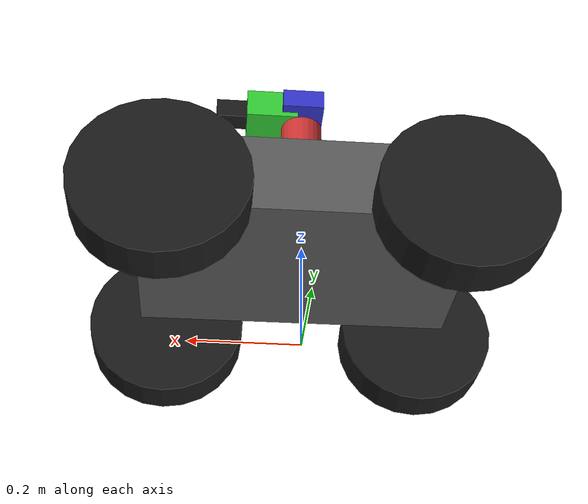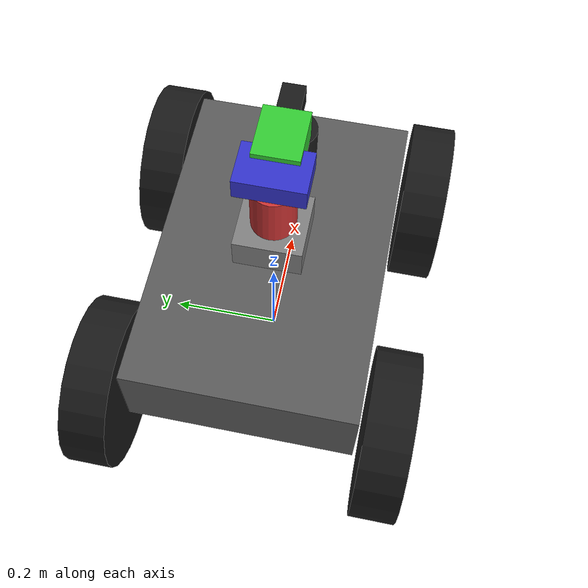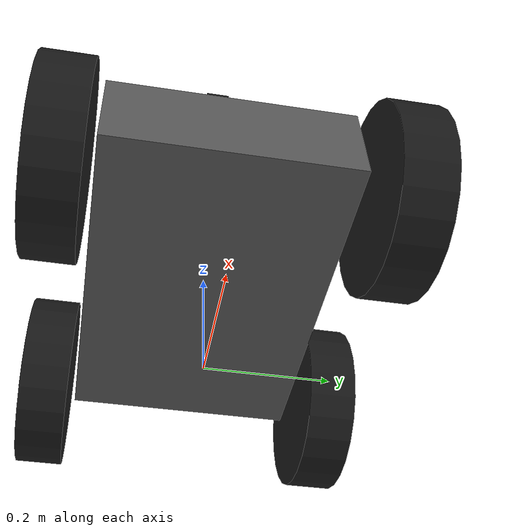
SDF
<?xml version="1.0" ?>
<sdf version="1.7">
  <model name="mecanum_robot" xmlns:gz="http://gazebosim.org/schema">

    <!-- BASE FOOTPRINT (虚拟链接) -->
    <link name="body">
      <inertial>
        <mass>0.001</mass>
        <inertia>
          <ixx>0.001</ixx>
          <iyy>0.001</iyy>
          <izz>0.001</izz>
        </inertia>
      </inertial>
    </link>

    <!-- CHASSIS -->
    <link name="chassis">
      <pose relative_to="body">0 0 0.225 0 0 0</pose>
      <inertial>
        <mass>15.0</mass>
        <inertia>
          <ixx>0.295</ixx>
          <iyy>0.645</iyy>
          <izz>0.850</izz>
        </inertia>
      </inertial>
      <visual name="chassis_visual">
        <geometry>
          <box>
            <size>0.6 0.4 0.15</size>
          </box>
        </geometry>
        <material>
          <ambient>0.35 0.35 0.35 1</ambient>
          <diffuse>0.35 0.35 0.35 1</diffuse>
        </material>
      </visual>
      <collision name="chassis_collision">
        <geometry>
          <box>
            <size>0.6 0.4 0.15</size>
          </box>
        </geometry>
      </collision>
    </link>

    <!-- body TO CHASSIS JOINT -->
    <joint name="body_to_chassis" type="fixed">
      <parent>body</parent>
      <child>chassis</child>
    </joint>

    <!-- FRONT LEFT WHEEL -->
    <link name="front_left_wheel_link">
      <pose relative_to="chassis">0.25 0.25 -0.075 -1.5707 0 0</pose>
      <inertial>
        <mass>0.5</mass>
        <inertia>
          <ixx>0.036458</ixx>
          <iyy>0.036458</iyy>
          <izz>0.03125</izz>
        </inertia>
      </inertial>
      <visual name="wheel_visual">
        <geometry>
          <cylinder>
            <radius>0.15</radius>
            <length>0.08</length>
          </cylinder>
        </geometry>
        <material>
          <ambient>0.1 0.1 0.1 1</ambient>
          <diffuse>0.1 0.1 0.1 1</diffuse>
        </material>
      </visual>
      <collision name="wheel_collision">
        <geometry>
          <cylinder>
            <radius>0.15</radius>
            <length>0.08</length>
          </cylinder>
        </geometry>
        <surface>
          <friction>
            <ode>
              <mu>1.0</mu>
              <mu2>0.0</mu2>
              <fdir1 gz:expressed_in="chassis">1 -1 0</fdir1>
            </ode>
          </friction>
        </surface>
      </collision>
    </link>

    <joint name="front_left_wheel_joint" type="revolute">
      <parent>chassis</parent>
      <child>front_left_wheel_link</child>
      <axis>
        <xyz>0 0 1</xyz>
      </axis>
    </joint>

    <!-- FRONT RIGHT WHEEL -->
    <link name="front_right_wheel_link">
      <pose relative_to="chassis">0.25 -0.25 -0.075 -1.5707 0 0</pose>
      <inertial>
        <mass>0.5</mass>
        <inertia>
          <ixx>0.036458</ixx>
          <iyy>0.036458</iyy>
          <izz>0.03125</izz>
        </inertia>
      </inertial>
      <visual name="wheel_visual">
        <geometry>
          <cylinder>
            <radius>0.15</radius>
            <length>0.08</length>
          </cylinder>
        </geometry>
        <material>
          <ambient>0.1 0.1 0.1 1</ambient>
          <diffuse>0.1 0.1 0.1 1</diffuse>
        </material>
      </visual>
      <collision name="wheel_collision">
        <geometry>
          <cylinder>
            <radius>0.15</radius>
            <length>0.08</length>
          </cylinder>
        </geometry>
        <surface>
          <friction>
            <ode>
              <mu>1.0</mu>
              <mu2>0.0</mu2>
              <fdir1 gz:expressed_in="chassis">1 1 0</fdir1>
            </ode>
          </friction>
        </surface>
      </collision>
    </link>

    <joint name="front_right_wheel_joint" type="revolute">
      <parent>chassis</parent>
      <child>front_right_wheel_link</child>
      <axis>
        <xyz>0 0 1</xyz>
      </axis>
    </joint>

    <!-- REAR LEFT WHEEL -->
    <link name="rear_left_wheel_link">
      <pose relative_to="chassis">-0.25 0.25 -0.075 -1.5707 0 0</pose>
      <inertial>
        <mass>0.5</mass>
        <inertia>
          <ixx>0.036458</ixx>
          <iyy>0.036458</iyy>
          <izz>0.03125</izz>
        </inertia>
      </inertial>
      <visual name="wheel_visual">
        <geometry>
          <cylinder>
            <radius>0.15</radius>
            <length>0.08</length>
          </cylinder>
        </geometry>
        <material>
          <ambient>0.1 0.1 0.1 1</ambient>
          <diffuse>0.1 0.1 0.1 1</diffuse>
        </material>
      </visual>
      <collision name="wheel_collision">
        <geometry>
          <cylinder>
            <radius>0.15</radius>
            <length>0.08</length>
          </cylinder>
        </geometry>
        <surface>
          <friction>
            <ode>
              <mu>1.0</mu>
              <mu2>0.0</mu2>
              <fdir1 gz:expressed_in="chassis">1 1 0</fdir1>
            </ode>
          </friction>
        </surface>
      </collision>
    </link>

    <joint name="rear_left_wheel_joint" type="revolute">
      <parent>chassis</parent>
      <child>rear_left_wheel_link</child>
      <axis>
        <xyz>0 0 1</xyz>
      </axis>
    </joint>

    <!-- REAR RIGHT WHEEL -->
    <link name="rear_right_wheel_link">
      <pose relative_to="chassis">-0.25 -0.25 -0.075 -1.5707 0 0</pose>
      <inertial>
        <mass>0.5</mass>
        <inertia>
          <ixx>0.036458</ixx>
          <iyy>0.036458</iyy>
          <izz>0.03125</izz>
        </inertia>
      </inertial>
      <visual name="wheel_visual">
        <geometry>
          <cylinder>
            <radius>0.15</radius>
            <length>0.08</length>
          </cylinder>
        </geometry>
        <material>
          <ambient>0.1 0.1 0.1 1</ambient>
          <diffuse>0.1 0.1 0.1 1</diffuse>
        </material>
      </visual>
      <collision name="wheel_collision">
        <geometry>
          <cylinder>
            <radius>0.15</radius>
            <length>0.08</length>
          </cylinder>
        </geometry>
        <surface>
          <friction>
            <ode>
              <mu>1.0</mu>
              <mu2>0.0</mu2>
              <fdir1 gz:expressed_in="chassis">1 -1 0</fdir1>
            </ode>
          </friction>
        </surface>
      </collision>
    </link>

    <joint name="rear_right_wheel_joint" type="revolute">
      <parent>chassis</parent>
      <child>rear_right_wheel_link</child>
      <axis>
        <xyz>0 0 1</xyz>
      </axis>
    </joint>

    <!-- LIDAR -->
    <link name="livox_lidar">
      <pose relative_to="chassis">0.2 0 0.125 0 0 0</pose>
      <inertial>
        <mass>0.2</mass>
        <inertia>
          <ixx>0.001</ixx>
          <iyy>0.001</iyy>
          <izz>0.001</izz>
        </inertia>
      </inertial>
      <visual name="lidar_visual">
        <geometry>
          <cylinder>
            <radius>0.04</radius>
            <length>0.06</length>
          </cylinder>
        </geometry>
        <material>
          <ambient>0.1 0.1 0.1 1</ambient>
          <diffuse>0.1 0.1 0.1 1</diffuse>
        </material>
      </visual>
      <collision name="lidar_collision">
        <geometry>
          <cylinder>
            <radius>0.04</radius>
            <length>0.06</length>
          </cylinder>
        </geometry>
      </collision>

      <!-- LIDAR SENSOR -->
      <sensor name="RGLLidar" type="custom">
        <plugin filename="RGLServerPluginInstance" name="rgl::RGLServerPluginInstance">
          <range>
            <min>0.05</min>
            <max>245</max>
          </range>
          <update_rate>10</update_rate>
          <update_on_paused_sim>false</update_on_paused_sim>
          <topic>livox/lidar</topic>
          <frame>livox_lidar</frame>
          <pattern_preset_path>/home/xlqmu/rm_sim_26/plugin/LivoxMid360.mat3x4f</pattern_preset_path>
        </plugin>
      </sensor>

      <!-- IMU SENSOR -->
      <sensor name="livox_lidar_imu" type="imu">
        <update_rate>100</update_rate>
        <always_on>true</always_on>
        <topic>/livox/imu</topic>
        <frame>livox_lidar</frame>
        <imu>
          <angular_velocity>
            <x>
              <noise type="gaussian">
                <mean>0.0</mean>
                <stddev>2e-4</stddev>
              </noise>
            </x>
            <y>
              <noise type="gaussian">
                <mean>0.0</mean>
                <stddev>2e-4</stddev>
              </noise>
            </y>
            <z>
              <noise type="gaussian">
                <mean>0.0</mean>
                <stddev>2e-4</stddev>
              </noise>
            </z>
          </angular_velocity>
          <linear_acceleration>
            <x>
              <noise type="gaussian">
                <mean>0.0</mean>
                <stddev>1.7e-2</stddev>
              </noise>
            </x>
            <y>
              <noise type="gaussian">
                <mean>0.0</mean>
                <stddev>1.7e-2</stddev>
              </noise>
            </y>
            <z>
              <noise type="gaussian">
                <mean>0.0</mean>
                <stddev>1.7e-2</stddev>
              </noise>
            </z>
          </linear_acceleration>
        </imu>
      </sensor>
    </link>

    <joint name="lidar_joint" type="fixed">
      <parent>chassis</parent>
      <child>livox_lidar</child>
    </joint>

    <!-- ========== 云台模块开始 ========== -->

    <!-- 云台底座 -->
    <link name="gimbal_base">
      <pose relative_to="chassis">0 0 0.125 0 0 0</pose>
      <inertial>
        <mass>0.5</mass>
        <inertia>
          <ixx>0.002</ixx>
          <iyy>0.002</iyy>
          <izz>0.002</izz>
        </inertia>
      </inertial>
      <visual name="gimbal_base_visual">
        <geometry>
          <box>
            <size>0.12 0.12 0.06</size>
          </box>
        </geometry>
        <material>
          <ambient>0.5 0.5 0.5 1</ambient>
          <diffuse>0.5 0.5 0.5 1</diffuse>
          <specular>0.3 0.3 0.3 1</specular>
        </material>
      </visual>
      <collision name="gimbal_base_collision">
        <geometry>
          <box>
            <size>0.12 0.12 0.06</size>
          </box>
        </geometry>
      </collision>
    </link>

    <joint name="gimbal_base_joint" type="fixed">
      <parent>chassis</parent>
      <child>gimbal_base</child>
    </joint>

    <!-- 云台偏航轴 (Yaw) -->
    <link name="gimbal_yaw">
      <pose relative_to="gimbal_base">0 0 0.08 0 0 0</pose>
      <inertial>
        <mass>0.3</mass>
        <inertia>
          <ixx>0.001</ixx>
          <iyy>0.001</iyy>
          <izz>0.001</izz>
        </inertia>
      </inertial>
      <visual name="gimbal_yaw_visual">
        <geometry>
          <cylinder>
            <radius>0.04</radius>
            <length>0.10</length>
          </cylinder>
        </geometry>
        <material>
          <ambient>0.8 0.2 0.2 1</ambient>
          <diffuse>0.8 0.2 0.2 1</diffuse>
          <specular>0.5 0.1 0.1 1</specular>
        </material>
      </visual>
      <collision name="gimbal_yaw_collision">
        <geometry>
          <cylinder>
            <radius>0.04</radius>
            <length>0.10</length>
          </cylinder>
        </geometry>
      </collision>
    </link>

    <joint name="gimbal_yaw_joint" type="revolute">
      <parent>gimbal_base</parent>
      <child>gimbal_yaw</child>
      <axis>
        <xyz>0 0 1</xyz>
        <limit>
          <lower>-3.14159</lower>
          <upper>3.14159</upper>
          <effort>10</effort>
          <velocity>3.14</velocity>
        </limit>
        <dynamics>
          <damping>0.1</damping>
          <friction>0.01</friction>
        </dynamics>
      </axis>
    </joint>

    <!-- 云台俯仰支架 -->
    <link name="gimbal_pitch_bracket">
      <pose relative_to="gimbal_yaw">0 0 0.08 0 0 0</pose>
      <inertial>
        <mass>0.2</mass>
        <inertia>
          <ixx>0.001</ixx>
          <iyy>0.001</iyy>
          <izz>0.001</izz>
        </inertia>
      </inertial>
      <visual name="gimbal_pitch_bracket_visual">
        <geometry>
          <box>
            <size>0.08 0.12 0.04</size>
          </box>
        </geometry>
        <material>
          <ambient>0.2 0.2 0.8 1</ambient>
          <diffuse>0.2 0.2 0.8 1</diffuse>
          <specular>0.1 0.1 0.5 1</specular>
        </material>
      </visual>
      <collision name="gimbal_pitch_bracket_collision">
        <geometry>
          <box>
            <size>0.08 0.12 0.04</size>
          </box>
        </geometry>
      </collision>
    </link>

    <joint name="gimbal_pitch_bracket_joint" type="fixed">
      <parent>gimbal_yaw</parent>
      <child>gimbal_pitch_bracket</child>
    </joint>

    <!-- 云台俯仰轴 (Pitch) -->
    <link name="gimbal_pitch">
      <pose relative_to="gimbal_pitch_bracket">0.06 0 0 0 0 0</pose>
      <inertial>
        <mass>0.25</mass>
        <inertia>
          <ixx>0.001</ixx>
          <iyy>0.002</iyy>
          <izz>0.002</izz>
        </inertia>
      </inertial>
      <visual name="gimbal_pitch_visual">
        <geometry>
          <box>
            <size>0.10 0.08 0.06</size>
          </box>
        </geometry>
        <material>
          <ambient>0.2 0.8 0.2 1</ambient>
          <diffuse>0.2 0.8 0.2 1</diffuse>
          <specular>0.1 0.5 0.1 1</specular>
        </material>
      </visual>
      <collision name="gimbal_pitch_collision">
        <geometry>
          <box>
            <size>0.10 0.08 0.06</size>
          </box>
        </geometry>
      </collision>
    </link>

    <joint name="gimbal_pitch_joint" type="revolute">
      <parent>gimbal_pitch_bracket</parent>
      <child>gimbal_pitch</child>
      <axis>
        <xyz>0 -1 0</xyz>
        <limit>
          <lower>-0.785398</lower>
          <upper>0.785398</upper>
          <effort>10</effort>
          <velocity>2.0</velocity>
        </limit>
        <dynamics>
          <damping>0.1</damping>
          <friction>0.01</friction>
        </dynamics>
      </axis>
    </joint>

    <!-- 摄像头 (安装在云台俯仰轴上) -->
    <link name="camera">
      <pose relative_to="gimbal_pitch">0.08 0 0 0 0 0</pose>
      <inertial>
        <mass>0.1</mass>
        <inertia>
          <ixx>0.0001</ixx>
          <iyy>0.0001</iyy>
          <izz>0.0001</izz>
        </inertia>
      </inertial>
      <visual name="camera_visual">
        <geometry>
          <box>
            <size>0.06 0.04 0.04</size>
          </box>
        </geometry>
        <material>
          <ambient>0.1 0.1 0.1 1</ambient>
          <diffuse>0.1 0.1 0.1 1</diffuse>
          <specular>0.1 0.1 0.1 1</specular>
        </material>
      </visual>
      <collision name="camera_collision">
        <geometry>
          <box>
            <size>0.06 0.04 0.04</size>
          </box>
        </geometry>
      </collision>
      <!-- 摄像头传感器 -->
      <sensor name="camera" type="camera">
        <update_rate>30</update_rate>
        <camera>
          <horizontal_fov>1.047</horizontal_fov>
          <image>
            <width>640</width>
            <height>480</height>
            <format>R8G8B8</format>
          </image>
          <clip>
            <near>0.1</near>
            <far>100</far>
          </clip>
        </camera>
      </sensor>
    </link>

    <joint name="camera_joint" type="fixed">
      <parent>gimbal_pitch</parent>
      <child>camera</child>
    </joint>

    <!-- ========== 云台模块结束 ========== -->

    <!-- MECANUM DRIVE PLUGIN -->
    <plugin filename="gz-sim-mecanum-drive-system" name="gz::sim::systems::MecanumDrive">
      <front_left_joint>front_left_wheel_joint</front_left_joint>
      <front_right_joint>front_right_wheel_joint</front_right_joint>
      <back_left_joint>rear_left_wheel_joint</back_left_joint>
      <back_right_joint>rear_right_wheel_joint</back_right_joint>
      <wheel_separation>0.5</wheel_separation>
      <wheelbase>0.5</wheelbase>
      <wheel_radius>0.15</wheel_radius>
      <topic>/cmd_vel</topic>
      <tf_topic>/tf</tf_topic>
      <frame_id>odom</frame_id>
      <child_frame_id>body</child_frame_id>
    </plugin>

    <!-- 云台控制插件 -->
    <plugin filename="gz-sim-joint-position-controller-system" name="gz::sim::systems::JointPositionController">
      <joint_name>gimbal_yaw_joint</joint_name>
      <topic>/gimbal/yaw/cmd_pos</topic>
      <p_gain>10</p_gain>
      <i_gain>0.1</i_gain>
      <d_gain>0.5</d_gain>
    </plugin>

    <plugin filename="gz-sim-joint-position-controller-system" name="gz::sim::systems::JointPositionController">
      <joint_name>gimbal_pitch_joint</joint_name>
      <topic>/gimbal/pitch/cmd_pos</topic>
      <p_gain>10</p_gain>
      <i_gain>0.1</i_gain>
      <d_gain>0.5</d_gain>
    </plugin>

    <plugin filename="gz-sim-joint-state-publisher-system" name="gz::sim::systems::JointStatePublisher">
      <topic>joint_states</topic>
      <joint_name>front_left_wheel_joint</joint_name>
      <joint_name>front_right_wheel_joint</joint_name>
      <joint_name>rear_left_wheel_joint</joint_name>
      <joint_name>rear_right_wheel_joint</joint_name>
      <joint_name>gimbal_yaw_joint</joint_name>
      <joint_name>gimbal_pitch_joint</joint_name>
    </plugin>

    <!-- Pose Publisher Plugin for TF -->
    <plugin filename="gz-sim-pose-publisher-system" name="gz::sim::systems::PosePublisher">
      <publish_link_pose>true</publish_link_pose>
      <publish_collision_pose>false</publish_collision_pose>
      <publish_visual_pose>false</publish_visual_pose>
      <publish_nested_model_pose>true</publish_nested_model_pose>
    </plugin>

  </model>
</sdf>
